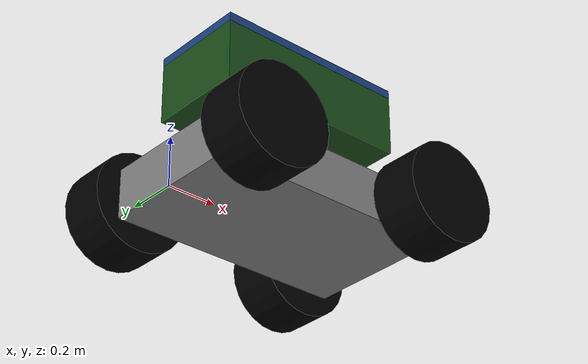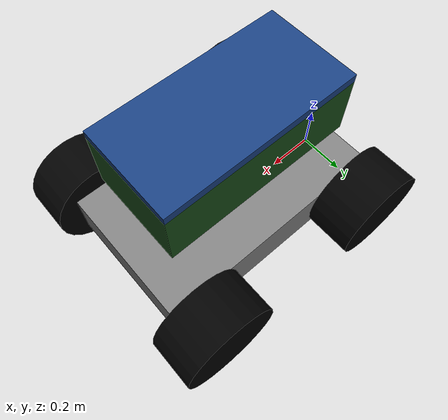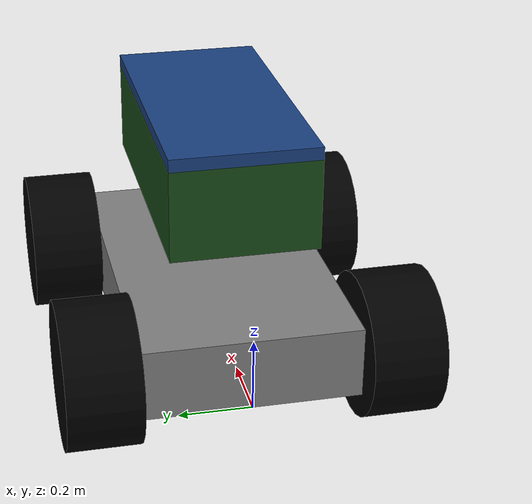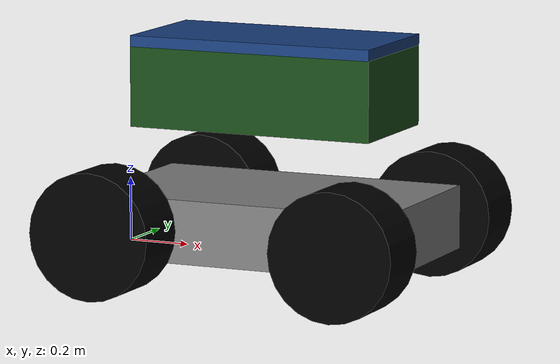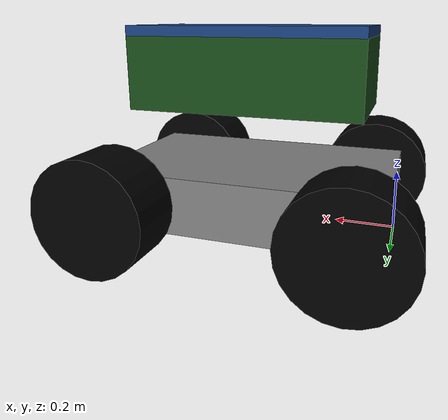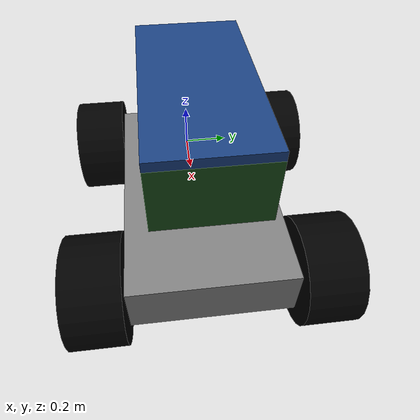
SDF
<?xml version="1.0" ?>
<sdf version="1.8">
  <model name="myrobot">
    <pose>0 0 0 0 0 0</pose>

    <!-- Base footprint (empty link for ground reference) -->
    <link name="base_footprint">
      <pose>0 0 0 0 0 0</pose>
    </link>

    <!-- Main chassis/base_link -->
    <link name="base_link">
      <pose>0.5 0 0 0 0 0</pose>
      <inertial>
        <mass>5.0</mass>
        <inertia>
          <ixx>0.1</ixx>
          <ixy>0.0</ixy>
          <ixz>0.0</ixz>
          <iyy>0.1</iyy>
          <iyz>0.0</iyz>
          <izz>0.1</izz>
        </inertia>
      </inertial>
      <visual name="base_visual">
        <pose>0 0 0.1 0 0 0</pose>
        <geometry>
          <box>
            <size>1 0.6 0.2</size>
          </box>
        </geometry>
        <material>
          <ambient>0.5 0.5 0.5 1</ambient>
          <diffuse>0.5 0.5 0.5 1</diffuse>
        </material>
      </visual>
      <collision name="base_collision">
        <pose>0 0 0.1 0 0 0</pose>
        <geometry>
          <box>
            <size>1 0.6 0.2</size>
          </box>
        </geometry>
      </collision>
    </link>

    <!-- Left Back Wheel -->
    <link name="lbwheel">
      <pose>0.1 0.3 0.1 -1.5708 0 0</pose>
      <inertial>
        <mass>0.5</mass>
        <inertia>
          <ixx>0.01</ixx>
          <ixy>0.0</ixy>
          <ixz>0.0</ixz>
          <iyy>0.01</iyy>
          <iyz>0.0</iyz>
          <izz>0.01</izz>
        </inertia>
      </inertial>
      <visual name="lbwheel_visual">
        <pose>0 0 0.1 0 0 0</pose>
        <geometry>
          <cylinder>
            <radius>0.2</radius>
            <length>0.2</length>
          </cylinder>
        </geometry>
        <material>
          <ambient>0 0 0 1</ambient>
          <diffuse>0 0 0 1</diffuse>
        </material>
      </visual>
      <collision name="lbwheel_collision">
        <pose>0 0 0.1 0 0 0</pose>
        <geometry>
          <cylinder>
            <radius>0.2</radius>
            <length>0.2</length>
          </cylinder>
        </geometry>
      </collision>
    </link>

    <!-- Left Front Wheel -->
    <link name="lfwheel">
      <pose>0.9 0.3 0.1 -1.5708 0 0</pose>
      <inertial>
        <mass>0.5</mass>
        <inertia>
          <ixx>0.01</ixx>
          <ixy>0.0</ixy>
          <ixz>0.0</ixz>
          <iyy>0.01</iyy>
          <iyz>0.0</iyz>
          <izz>0.01</izz>
        </inertia>
      </inertial>
      <visual name="lfwheel_visual">
        <pose>0 0 0.1 0 0 0</pose>
        <geometry>
          <cylinder>
            <radius>0.2</radius>
            <length>0.2</length>
          </cylinder>
        </geometry>
        <material>
          <ambient>0 0 0 1</ambient>
          <diffuse>0 0 0 1</diffuse>
        </material>
      </visual>
      <collision name="lfwheel_collision">
        <pose>0 0 0.1 0 0 0</pose>
        <geometry>
          <cylinder>
            <radius>0.2</radius>
            <length>0.2</length>
          </cylinder>
        </geometry>
      </collision>
    </link>

    <!-- Right Front Wheel -->
    <link name="rfwheel">
      <pose>0.9 -0.3 0.1 -1.5708 0 0</pose>
      <inertial>
        <mass>0.5</mass>
        <inertia>
          <ixx>0.01</ixx>
          <ixy>0.0</ixy>
          <ixz>0.0</ixz>
          <iyy>0.01</iyy>
          <iyz>0.0</iyz>
          <izz>0.01</izz>
        </inertia>
      </inertial>
      <visual name="rfwheel_visual">
        <pose>0 0 -0.1 0 0 0</pose>
        <geometry>
          <cylinder>
            <radius>0.2</radius>
            <length>0.2</length>
          </cylinder>
        </geometry>
        <material>
          <ambient>0 0 0 1</ambient>
          <diffuse>0 0 0 1</diffuse>
        </material>
      </visual>
      <collision name="rfwheel_collision">
        <pose>0 0 -0.1 0 0 0</pose>
        <geometry>
          <cylinder>
            <radius>0.2</radius>
            <length>0.2</length>
          </cylinder>
        </geometry>
      </collision>
    </link>

    <!-- Right Back Wheel -->
    <link name="rbwheel">
      <pose>0.1 -0.3 0.1 -1.5708 0 0</pose>
      <inertial>
        <mass>0.5</mass>
        <inertia>
          <ixx>0.01</ixx>
          <ixy>0.0</ixy>
          <ixz>0.0</ixz>
          <iyy>0.01</iyy>
          <iyz>0.0</iyz>
          <izz>0.01</izz>
        </inertia>
      </inertial>
      <visual name="rbwheel_visual">
        <pose>0 0 -0.1 0 0 0</pose>
        <geometry>
          <cylinder>
            <radius>0.2</radius>
            <length>0.2</length>
          </cylinder>
        </geometry>
        <material>
          <ambient>0 0 0 1</ambient>
          <diffuse>0 0 0 1</diffuse>
        </material>
      </visual>
      <collision name="rbwheel_collision">
        <pose>0 0 -0.1 0 0 0</pose>
        <geometry>
          <cylinder>
            <radius>0.2</radius>
            <length>0.2</length>
          </cylinder>
        </geometry>
      </collision>
    </link>

    <!-- Box -->
    <link name="box">
      <pose>0.5 0 0.4 0 0 0</pose>
      <inertial>
        <mass>1.0</mass>
        <inertia>
          <ixx>0.05</ixx>
          <ixy>0.0</ixy>
          <ixz>0.0</ixz>
          <iyy>0.05</iyy>
          <iyz>0.0</iyz>
          <izz>0.05</izz>
        </inertia>
      </inertial>
      <visual name="box_visual">
        <pose>0 0 0 0 0 0</pose>
        <geometry>
            <mesh>
              <uri>model://shooter/meshes/box.stl</uri>
              <scale>1 1 1</scale>
            </mesh>
        </geometry>
        <material>
          <ambient>0.1 0.3 0.1 1</ambient>
          <diffuse>0.1 0.3 0.1 1</diffuse>
        </material>
      </visual>
      <collision name="box_collision">
        <pose>0 0 0 0 0 0</pose>
        <geometry>
          <box>
            <size>0.8 0.4 0.5</size>
          </box>
        </geometry>
      </collision>
    </link>

    <!-- Lid -->
    <link name="lid">
      <pose>0.1 0 0.65 0 0 0</pose>
      <inertial>
        <mass>0.2</mass>
        <inertia>
          <ixx>0.01</ixx>
          <ixy>0.0</ixy>
          <ixz>0.0</ixz>
          <iyy>0.01</iyy>
          <iyz>0.0</iyz>
          <izz>0.01</izz>
        </inertia>
      </inertial>
      <visual name="lid_visual">
        <pose>0.4 0 0.0175 0 0 0</pose>
        <geometry>
          <box>
            <size>0.8 0.4 0.035</size>
          </box>
        </geometry>
        <material>
          <ambient>0.1 0.25 0.5 1</ambient>
          <diffuse>0.1 0.25 0.5 1</diffuse>
        </material>
      </visual>
      <collision name="lid_collision">
        <pose>0.4 0 0.0175 0 0 0</pose>
        <geometry>
          <box>
            <size>0.8 0.4 0.035</size>
          </box>
        </geometry>
      </collision>
    </link>

    <!-- Joints -->
    <joint name="chassijoint" type="fixed">
      <parent>base_footprint</parent>
      <child>base_link</child>
    </joint>

    <joint name="lbwheel_joint" type="revolute">
      <parent>base_link</parent>
      <child>lbwheel</child>
      <axis>
        <xyz>0 0 -1</xyz>
      </axis>
    </joint>

    <joint name="lfwheel_joint" type="revolute">
      <parent>base_link</parent>
      <child>lfwheel</child>
      <axis>
        <xyz>0 0 -1</xyz>
      </axis>
    </joint>

    <joint name="rfwheel_joint" type="revolute">
      <parent>base_link</parent>
      <child>rfwheel</child>
      <axis>
        <xyz>0 0 -1</xyz>
      </axis>
    </joint>

    <joint name="rbwheel_joint" type="revolute">
      <parent>base_link</parent>
      <child>rbwheel</child>
      <axis>
        <xyz>0 0 1</xyz>
      </axis>
    </joint>

    <joint name="box_joint" type="fixed">
      <parent>base_link</parent>
      <child>box</child>
    </joint>

    <joint name="lid_joint" type="revolute">
      <parent>box</parent>
      <child>lid</child>
      <axis>
        <xyz>0 -1 0</xyz>
        <limit>
          <lower>0</lower>
          <upper>1.57</upper>
          <effort>10</effort>
          <velocity>1</velocity>
        </limit>
      </axis>
    </joint>

    <!-- Gazebo plugins -->
    <plugin filename="gz-sim-joint-state-publisher-system" name="gz::sim::systems::JointStatePublisher">
      <topic>joint_states</topic>
    </plugin>

    <!-- Joint position controller for lid -->
    <plugin filename="gz-sim-joint-position-controller-system" name="gz::sim::systems::JointPositionController">
      <joint_name>lid_joint</joint_name>
      <topic>lid_joint_position_controller/command</topic>
      <initial_position>0</initial_position>
      <p_gain>3000</p_gain>
      <i_gain>2.0</i_gain>
      <d_gain>300</d_gain>
      <i_max>150</i_max>
      <i_min>-150</i_min>
      <cmd_max>15</cmd_max>
      <cmd_min>-15</cmd_min>
    </plugin>

  </model>
</sdf>
